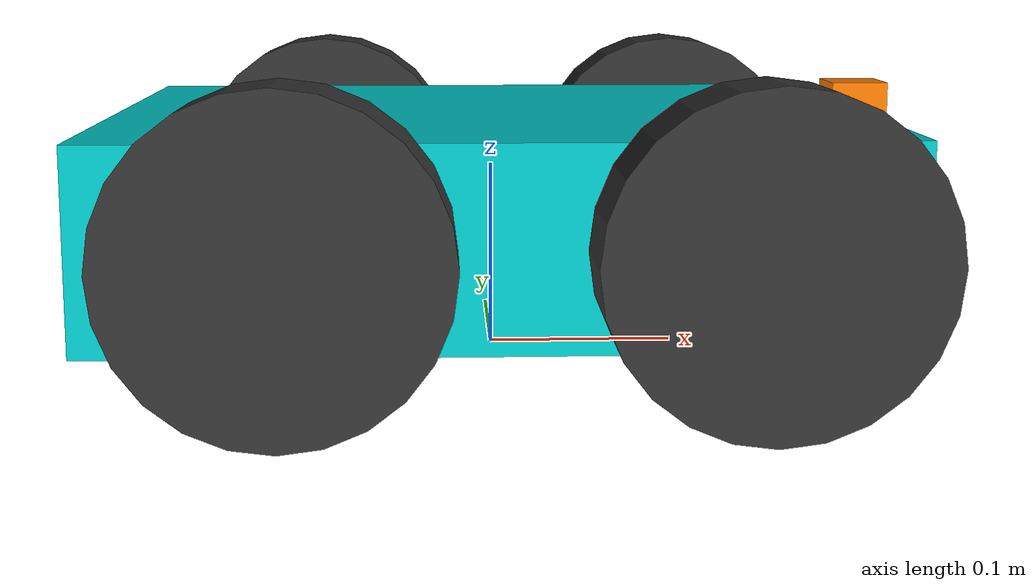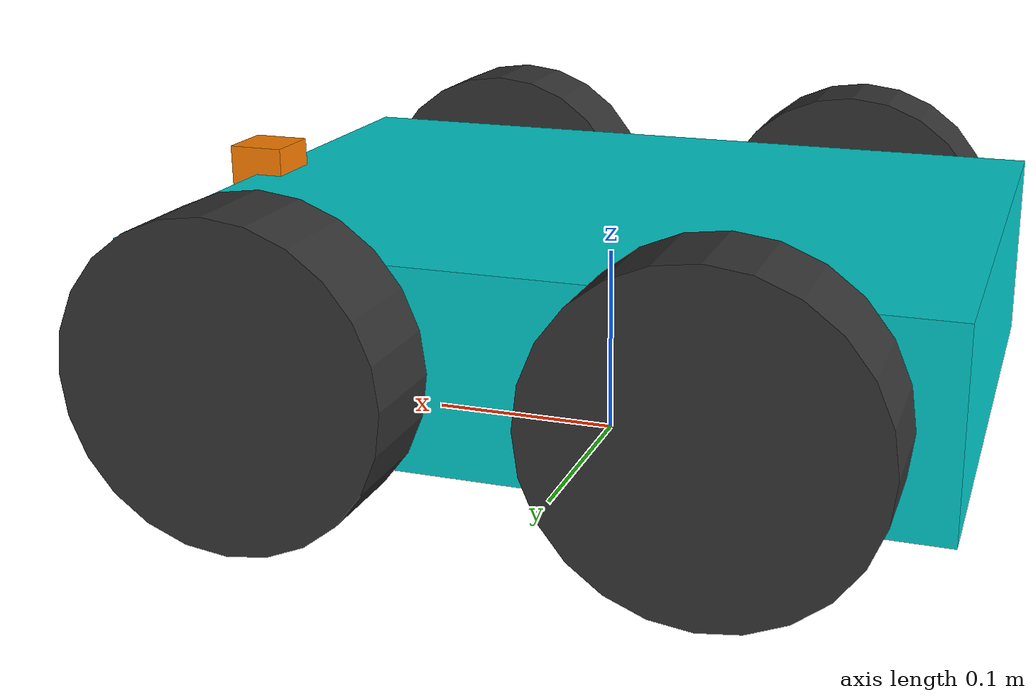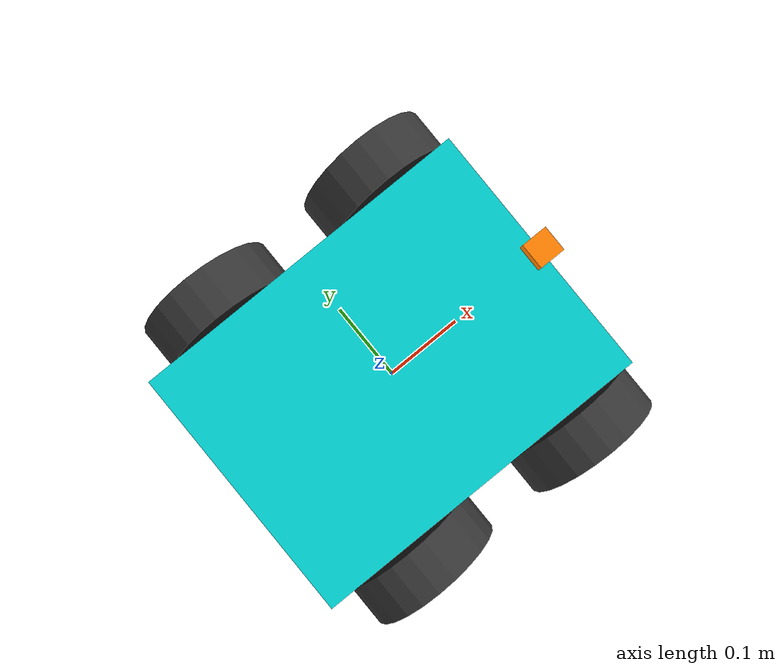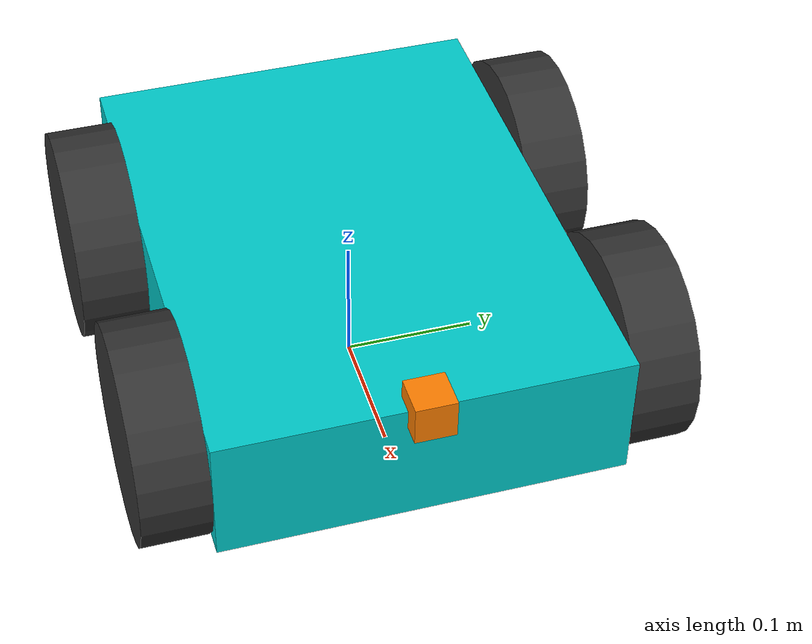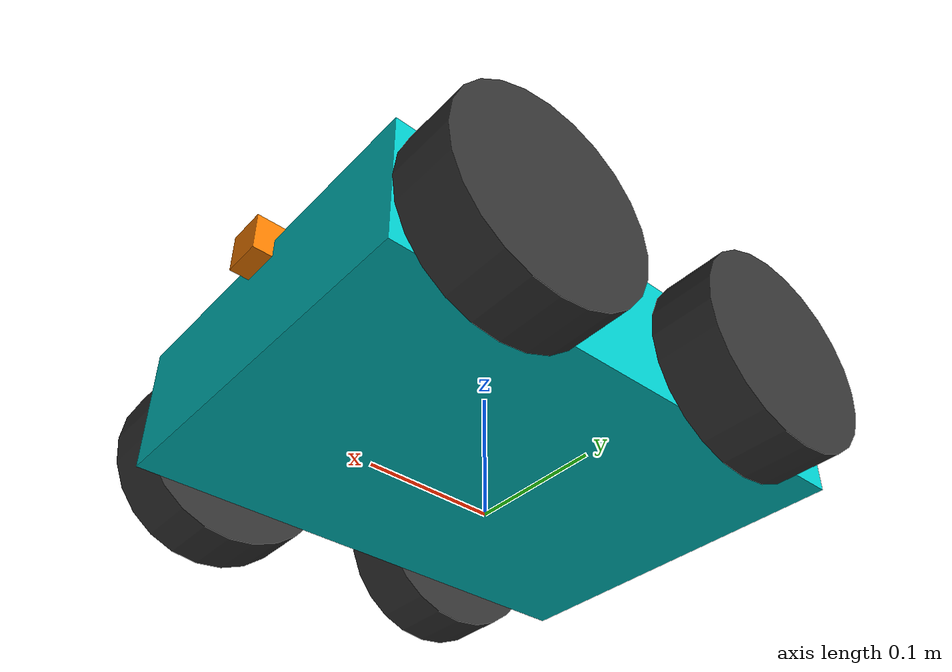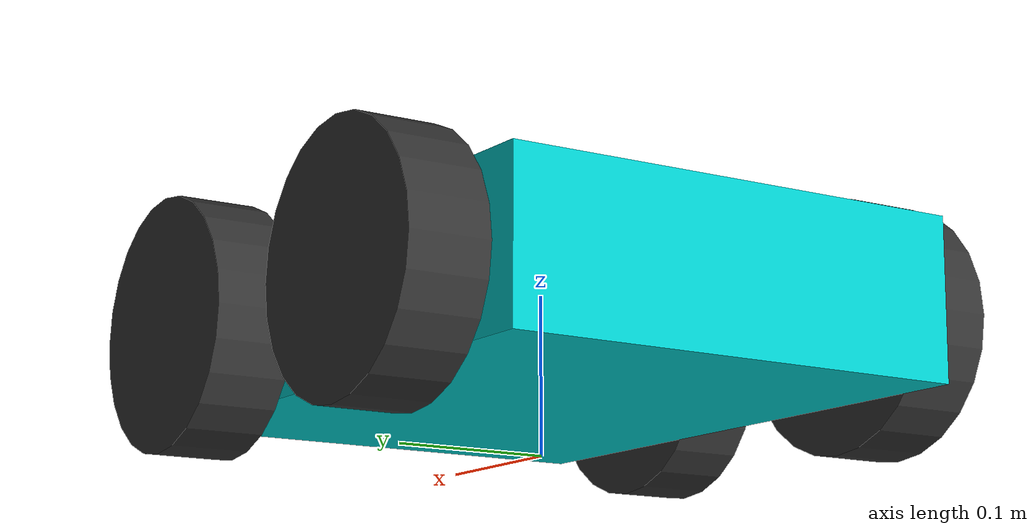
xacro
<?xml version="1.0"?>
<robot name="minicar" xmlns:xacro="http://www.ros.org/wiki/xacro">

  <!-- Colors and Materials -->
  <material name="cyan">
    <color rgba="0.0 0.8 0.8 1.0"/>
  </material>
  <material name="dark_grey">
    <color rgba="0.2 0.2 0.2 1.0"/>
  </material>
  <material name="silver">
    <color rgba="0.8 0.8 0.8 1.0"/>
  </material>
  <material name="orange">
    <color rgba="1.0 0.5 0.0 1.0"/>
  </material>

  <!-- Inertial Macros -->
  <!-- Solid Box Inertia -->
  <xacro:macro name="box_inertial" params="mass x y z">
    <inertial>
      <mass value="${mass}"/>
      <inertia ixx="${(1.0/12.0) * mass * (y*y + z*z)}" ixy="0.0" ixz="0.0"
               iyy="${(1.0/12.0) * mass * (x*x + z*z)}" iyz="0.0"
               izz="${(1.0/12.0) * mass * (x*x + y*y)}"/>
    </inertial>
  </xacro:macro>

  <!-- Solid Cylinder Inertia -->
  <xacro:macro name="cylinder_inertial" params="mass r h">
    <inertial>
      <mass value="${mass}"/>
      <inertia ixx="${(1.0/12.0) * mass * (3*r*r + h*h)}" ixy="0.0" ixz="0.0"
               iyy="${(1.0/12.0) * mass * (3*r*r + h*h)}" iyz="0.0"
               izz="${0.5 * mass * r*r}"/>
    </inertial>
  </xacro:macro>

  <!-- Solid Sphere Inertia -->
  <xacro:macro name="sphere_inertial" params="mass r">
    <inertial>
      <mass value="${mass}"/>
      <inertia ixx="${(2.0/5.0) * mass * r*r}" ixy="0.0" ixz="0.0"
               iyy="${(2.0/5.0) * mass * r*r}" iyz="0.0"
               izz="${(2.0/5.0) * mass * r*r}"/>
    </inertial>
  </xacro:macro>

  <!-- Links and Joints -->

  <!-- Base Footprint (Virtual link representing ground projection) -->
  <link name="base_footprint"/>

  <!-- Base Link (Chassis) -->
  <link name="base_link">
    <visual>
      <origin xyz="0.0 0.0 0.0" rpy="0.0 0.0 0.0"/>
      <geometry>
        <box size="0.4 0.3 0.1"/>
      </geometry>
      <material name="cyan"/>
    </visual>
    <collision>
      <origin xyz="0.0 0.0 0.0" rpy="0.0 0.0 0.0"/>
      <geometry>
        <box size="0.4 0.3 0.1"/>
      </geometry>
    </collision>
    <xacro:box_inertial mass="2.0" x="0.4" y="0.3" z="0.1"/>
  </link>

  <joint name="base_footprint_joint" type="fixed">
    <parent link="base_footprint"/>
    <child link="base_link"/>
    <!-- The chassis bottom is 0.03m above ground. Axis center is at z = 0.08m -->
    <origin xyz="0.0 0.0 0.08" rpy="0.0 0.0 0.0"/>
  </joint>

  <!-- Rear Left Wheel -->
  <link name="left_wheel">
    <visual>
      <!-- Cylinders are along Z by default, so we rotate it to align with axle (along Y) -->
      <origin xyz="0.0 0.0 0.0" rpy="${pi/2} 0.0 0.0"/>
      <geometry>
        <cylinder radius="0.08" length="0.05"/>
      </geometry>
      <material name="dark_grey"/>
    </visual>
    <collision>
      <origin xyz="0.0 0.0 0.0" rpy="${pi/2} 0.0 0.0"/>
      <geometry>
        <cylinder radius="0.08" length="0.05"/>
      </geometry>
    </collision>
    <xacro:cylinder_inertial mass="0.5" r="0.08" h="0.05"/>
  </link>

  <joint name="left_wheel_joint" type="continuous">
    <parent link="base_link"/>
    <child link="left_wheel"/>
    <!-- Positioned at the rear-left relative to chassis center -->
    <origin xyz="-0.1 0.175 0.0" rpy="0.0 0.0 0.0"/>
    <axis xyz="0.0 1.0 0.0"/>
  </joint>

  <!-- Rear Right Wheel -->
  <link name="right_wheel">
    <visual>
      <origin xyz="0.0 0.0 0.0" rpy="${pi/2} 0.0 0.0"/>
      <geometry>
        <cylinder radius="0.08" length="0.05"/>
      </geometry>
      <material name="dark_grey"/>
    </visual>
    <collision>
      <origin xyz="0.0 0.0 0.0" rpy="${pi/2} 0.0 0.0"/>
      <geometry>
        <cylinder radius="0.08" length="0.05"/>
      </geometry>
    </collision>
    <xacro:cylinder_inertial mass="0.5" r="0.08" h="0.05"/>
  </link>

  <joint name="right_wheel_joint" type="continuous">
    <parent link="base_link"/>
    <child link="right_wheel"/>
    <!-- Positioned at the rear-right relative to chassis center -->
    <origin xyz="-0.1 -0.175 0.0" rpy="0.0 0.0 0.0"/>
    <axis xyz="0.0 1.0 0.0"/>
  </joint>

  <!-- Front Left Steering Link & Joint -->
  <link name="front_left_steering">
    <xacro:box_inertial mass="0.05" x="0.02" y="0.02" z="0.02"/>
  </link>

  <joint name="front_left_steering_joint" type="revolute">
    <parent link="base_link"/>
    <child link="front_left_steering"/>
    <origin xyz="0.12 0.175 0.0" rpy="0.0 0.0 0.0"/>
    <axis xyz="0.0 0.0 1.0"/>
    <limit lower="-1.05" upper="1.05" effort="10.0" velocity="1.0"/>
  </joint>

  <!-- Front Left Wheel Link & Joint -->
  <link name="front_left_wheel">
    <visual>
      <origin xyz="0.0 0.0 0.0" rpy="${pi/2} 0.0 0.0"/>
      <geometry>
        <cylinder radius="0.08" length="0.05"/>
      </geometry>
      <material name="dark_grey"/>
    </visual>
    <collision>
      <origin xyz="0.0 0.0 0.0" rpy="${pi/2} 0.0 0.0"/>
      <geometry>
        <cylinder radius="0.08" length="0.05"/>
      </geometry>
    </collision>
    <xacro:cylinder_inertial mass="0.5" r="0.08" h="0.05"/>
  </link>

  <joint name="front_left_wheel_joint" type="continuous">
    <parent link="front_left_steering"/>
    <child link="front_left_wheel"/>
    <origin xyz="0.0 0.0 0.0" rpy="0.0 0.0 0.0"/>
    <axis xyz="0.0 1.0 0.0"/>
  </joint>

  <!-- Front Right Steering Link & Joint -->
  <link name="front_right_steering">
    <xacro:box_inertial mass="0.05" x="0.02" y="0.02" z="0.02"/>
  </link>

  <joint name="front_right_steering_joint" type="revolute">
    <parent link="base_link"/>
    <child link="front_right_steering"/>
    <origin xyz="0.12 -0.175 0.0" rpy="0.0 0.0 0.0"/>
    <axis xyz="0.0 0.0 1.0"/>
    <limit lower="-1.05" upper="1.05" effort="10.0" velocity="1.0"/>
  </joint>

  <!-- Front Right Wheel Link & Joint -->
  <link name="front_right_wheel">
    <visual>
      <origin xyz="0.0 0.0 0.0" rpy="${pi/2} 0.0 0.0"/>
      <geometry>
        <cylinder radius="0.08" length="0.05"/>
      </geometry>
      <material name="dark_grey"/>
    </visual>
    <collision>
      <origin xyz="0.0 0.0 0.0" rpy="${pi/2} 0.0 0.0"/>
      <geometry>
        <cylinder radius="0.08" length="0.05"/>
      </geometry>
    </collision>
    <xacro:cylinder_inertial mass="0.5" r="0.08" h="0.05"/>
  </link>

  <joint name="front_right_wheel_joint" type="continuous">
    <parent link="front_right_steering"/>
    <child link="front_right_wheel"/>
    <origin xyz="0.0 0.0 0.0" rpy="0.0 0.0 0.0"/>
    <axis xyz="0.0 1.0 0.0"/>
  </joint>

  <!-- Camera Link -->
  <link name="camera_link">
    <visual>
      <origin xyz="0.0 0.0 0.0" rpy="0.0 0.0 0.0"/>
      <geometry>
        <box size="0.03 0.03 0.03"/>
      </geometry>
      <material name="orange"/>
    </visual>
    <collision>
      <origin xyz="0.0 0.0 0.0" rpy="0.0 0.0 0.0"/>
      <geometry>
        <box size="0.03 0.03 0.03"/>
      </geometry>
    </collision>
    <xacro:box_inertial mass="0.05" x="0.03" y="0.03" z="0.03"/>
  </link>

  <joint name="camera_joint" type="fixed">
    <parent link="base_link"/>
    <child link="camera_link"/>
    <!-- Mounted at the absolute front of the chassis, top edge -->
    <origin xyz="0.2 0.0 0.05" rpy="0.0 0.0 0.0"/>
  </joint>

  <!-- Camera Optical Link (Standard camera frame for ROS/CV image processing) -->
  <link name="camera_optical_link"/>

  <joint name="camera_optical_joint" type="fixed">
    <parent link="camera_link"/>
    <child link="camera_optical_link"/>
    <!-- Rotated from standard robot body coordinate frame (X-forward) to optical frame (Z-forward) -->
    <origin xyz="0.0 0.0 0.0" rpy="${-pi/2} 0.0 ${-pi/2}"/>
  </joint>

  <!-- Gazebo Specific Configurations & Plugins -->

  <!-- Materials for Gazebo Sim Rendering -->
  <gazebo reference="base_link">
    <visual>
      <material>
        <ambient>0.0 0.8 0.8 1.0</ambient>
        <diffuse>0.0 0.8 0.8 1.0</diffuse>
        <specular>0.5 0.5 0.5 1.0</specular>
      </material>
    </visual>
  </gazebo>

  <gazebo reference="left_wheel">
    <visual>
      <material>
        <ambient>0.15 0.15 0.15 1.0</ambient>
        <diffuse>0.15 0.15 0.15 1.0</diffuse>
        <specular>0.2 0.2 0.2 1.0</specular>
      </material>
    </visual>
    <mu1>10.0</mu1>
    <mu2>10.0</mu2>
  </gazebo>

  <gazebo reference="right_wheel">
    <visual>
      <material>
        <ambient>0.15 0.15 0.15 1.0</ambient>
        <diffuse>0.15 0.15 0.15 1.0</diffuse>
        <specular>0.2 0.2 0.2 1.0</specular>
      </material>
    </visual>
    <mu1>10.0</mu1>
    <mu2>10.0</mu2>
  </gazebo>

  <!-- Front Left and Right Wheels Gazebo References -->
  <gazebo reference="front_left_wheel">
    <visual>
      <material>
        <ambient>0.15 0.15 0.15 1.0</ambient>
        <diffuse>0.15 0.15 0.15 1.0</diffuse>
        <specular>0.2 0.2 0.2 1.0</specular>
      </material>
    </visual>
    <mu1>10.0</mu1>
    <mu2>10.0</mu2>
  </gazebo>

  <gazebo reference="front_right_wheel">
    <visual>
      <material>
        <ambient>0.15 0.15 0.15 1.0</ambient>
        <diffuse>0.15 0.15 0.15 1.0</diffuse>
        <specular>0.2 0.2 0.2 1.0</specular>
      </material>
    </visual>
    <mu1>10.0</mu1>
    <mu2>10.0</mu2>
  </gazebo>

  <gazebo reference="camera_link">
    <visual>
      <material>
        <ambient>1.0 0.5 0.0 1.0</ambient>
        <diffuse>1.0 0.5 0.0 1.0</diffuse>
        <specular>0.5 0.5 0.5 1.0</specular>
      </material>
    </visual>
  </gazebo>

  <!-- Front Monocular Camera Sensor -->
  <gazebo reference="camera_link">
    <sensor name="camera" type="camera">
      <camera>
        <horizontal_fov>2.094</horizontal_fov>
        <image>
          <width>640</width>
          <height>480</height>
          <format>R8G8B8</format>
        </image>
        <clip>
          <near>0.05</near>
          <far>100</far>
        </clip>
        <noise>
          <type>gaussian</type>
          <mean>0.0</mean>
          <stddev>0.007</stddev>
        </noise>
      </camera>
      <always_on>1</always_on>
      <update_rate>30</update_rate>
      <visualize>true</visualize>
      <!-- Published directly to Gazebo Transport topic -->
      <topic>/camera/image_raw</topic>
    </sensor>
  </gazebo>

  <!-- Ackermann Steering & Joint State Plugins -->
  <gazebo>
    <plugin
      filename="ignition-gazebo-ackermann-steering-system"
      name="ignition::gazebo::systems::AckermannSteering">
      <left_joint>left_wheel_joint</left_joint>
      <right_joint>right_wheel_joint</right_joint>
      <left_steering_joint>front_left_steering_joint</left_steering_joint>
      <right_steering_joint>front_right_steering_joint</right_steering_joint>

      <!-- Kinematics -->
      <wheel_separation>0.35</wheel_separation>
      <kingpin_width>0.35</kingpin_width>
      <wheel_base>0.22</wheel_base>
      <wheel_radius>0.08</wheel_radius>
      <steering_limit>1.05</steering_limit>

      <!-- Limits and configurations -->
      <odom_publish_frequency>30</odom_publish_frequency>
      <max_linear_acceleration>10.0</max_linear_acceleration>
      <min_linear_acceleration>-10.0</min_linear_acceleration>
      <max_angular_acceleration>15.0</max_angular_acceleration>
      <min_angular_acceleration>-15.0</min_angular_acceleration>

      <!-- Topic names -->
      <topic>/cmd_vel</topic>
      <odom_topic>/odom</odom_topic>
      <tf_topic>/tf</tf_topic>

      <!-- Frame IDs -->
      <frame_id>odom</frame_id>
      <child_frame_id>base_footprint</child_frame_id>
    </plugin>

    <!-- Joint state publisher for wheel positions in ROS2 -->
    <plugin
      filename="ignition-gazebo-joint-state-publisher-system"
      name="ignition::gazebo::systems::JointStatePublisher">
      <topic>/joint_states</topic>
      <joint_name>left_wheel_joint</joint_name>
      <joint_name>right_wheel_joint</joint_name>
      <joint_name>front_left_steering_joint</joint_name>
      <joint_name>front_right_steering_joint</joint_name>
      <joint_name>front_left_wheel_joint</joint_name>
      <joint_name>front_right_wheel_joint</joint_name>
    </plugin>
  </gazebo>

</robot>
